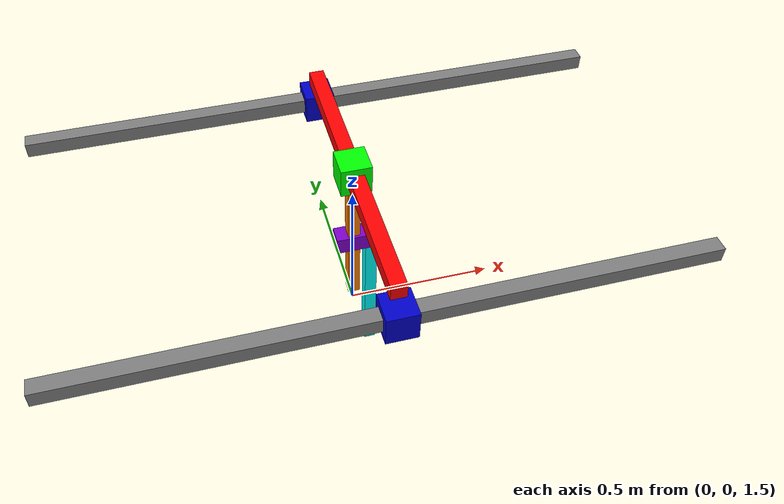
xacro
<?xml version="1.0"?>
<robot name="parallel_beam_gantry">

  <!-- |                                     BASE                                        | -->

  <!-- World Link: The static origin of the entire robot model -->
  <link name="world" />

  <!-- |                         X-AXIS GANTRY STRUCTURE (FIXED)                         | -->

  <!-- First parallel beam, mounted 2m high -->
  <link name="parallel_beam_1_link">
    <visual>
      <origin xyz="0 0 0" rpy="0 0 0"/>
      <geometry><box size="2.0 0.05 0.05"/></geometry>
      <material name="grey"><color rgba="0.5 0.5 0.5 1.0"/></material>
    </visual>
    <collision>
      <origin xyz="0 0 0" rpy="0 0 0"/>
      <geometry><box size="2.0 0.05 0.05"/></geometry>
    </collision>
    <inertial>
      <origin xyz="0 0 0" rpy="0 0 0"/>
      <mass value="2.0"/>
      <inertia ixx="0.000833" ixy="0.0" ixz="0.0" iyy="0.667083" iyz="0.0" izz="0.667083"/>
    </inertial>
  </link>
  <joint name="world_to_beam_1_joint" type="fixed">
    <parent link="world"/>
    <child link="parallel_beam_1_link"/>
    <origin xyz="0 0.5 2.0" rpy="0 0 0"/>
  </joint>

  <!-- Second parallel beam, mounted 2m high -->
  <link name="parallel_beam_2_link">
    <visual>
      <origin xyz="0 0 0" rpy="0 0 0"/>
      <geometry><box size="2.0 0.05 0.05"/></geometry>
      <material name="grey"/>
    </visual>
    <collision>
      <origin xyz="0 0 0" rpy="0 0 0"/>
      <geometry><box size="2.0 0.05 0.05"/></geometry>
    </collision>
    <inertial>
      <origin xyz="0 0 0" rpy="0 0 0"/>
      <mass value="2.0"/>
      <inertia ixx="0.000833" ixy="0.0" ixz="0.0" iyy="0.667083" iyz="0.0" izz="0.667083"/>
    </inertial>
  </link>
  <joint name="world_to_beam_2_joint" type="fixed">
    <parent link="world"/>
    <child link="parallel_beam_2_link"/>
    <origin xyz="0 -0.5 2.0" rpy="0 0 0"/>
  </joint>

  <!-- |                       X-AXIS MOTION ASSEMBLY (MOVES ON X)                       | -->

  <!-- Master slider for the X-axis -->
  <link name="x_slider_1_link">
    <visual>
      <geometry><box size="0.1 0.1 0.1"/></geometry>
      <material name="blue"><color rgba="0 0 0.8 1.0"/></material>
    </visual>
    <collision><geometry><box size="0.1 0.1 0.1"/></geometry></collision>
    <inertial>
      <origin xyz="0 0 0" rpy="0 0 0"/>
      <mass value="0.2"/>
      <inertia ixx="0.000333" ixy="0.0" ixz="0.0" iyy="0.000333" iyz="0.0" izz="0.000333"/>
    </inertial>
  </link>
  <joint name="x_slider_joint" type="prismatic">
    <parent link="parallel_beam_1_link"/>
    <child link="x_slider_1_link"/>
    <origin xyz="0 0 0" rpy="0 0 0"/>
    <axis xyz="1 0 0"/>
    <limit lower="-0.95" upper="0.95" effort="100" velocity="1.0"/>
  </joint>

  <!-- Slave slider for the X-axis (mimics the master) -->
  <link name="x_slider_2_link">
    <visual>
      <geometry><box size="0.1 0.1 0.1"/></geometry>
      <material name="blue"/>
    </visual>
    <collision><geometry><box size="0.1 0.1 0.1"/></geometry></collision>
    <inertial>
      <origin xyz="0 0 0" rpy="0 0 0"/>
      <mass value="0.2"/>
      <inertia ixx="0.000333" ixy="0.0" ixz="0.0" iyy="0.000333" iyz="0.0" izz="0.000333"/>
    </inertial>
  </link>
  <joint name="x_slider_mimic_joint" type="prismatic">
    <parent link="parallel_beam_2_link"/>
    <child link="x_slider_2_link"/>
    <origin xyz="0 0 0" rpy="0 0 0"/>
    <axis xyz="1 0 0"/>
    <limit lower="-0.95" upper="0.95" effort="100" velocity="1.0"/>
    <mimic joint="x_slider_joint" multiplier="1" offset="0"/>
  </joint>

  <!-- |                     Y-AXIS CARRIAGE ASSEMBLY (MOVES ON X)                       | -->

  <!-- Cross beam that spans the gantry and acts as the rail for the Y-axis -->
  <link name="cross_beam_link">
    <visual>
      <geometry><box size="0.05 1.0 0.05"/></geometry>
      <material name="red"><color rgba="1.0 0 0 1.0"/></material>
    </visual>
    <collision><geometry><box size="0.05 1.0 0.05"/></geometry></collision>
    <inertial>
      <origin xyz="0 0 0" rpy="0 0 0"/>
      <mass value="1.0"/>
      <inertia ixx="0.083542" ixy="0.0" ixz="0.0" iyy="0.000417" iyz="0.0" izz="0.083542"/>
    </inertial>
  </link>
  <joint name="cross_beam_attachment_joint" type="fixed">
    <parent link="x_slider_1_link"/>
    <child link="cross_beam_link"/>
    <origin xyz="0 -0.5 0.1" rpy="0 0 0"/>
  </joint>

  <!-- Slider for the Y-axis (moves along the red cross beam) -->
  <link name="y_slider_link">
    <visual>
      <geometry><box size="0.1 0.1 0.1"/></geometry>
      <material name="green"><color rgba="0 1.0 0 1.0"/></material>
    </visual>
    <collision><geometry><box size="0.1 0.1 0.1"/></geometry></collision>
    <inertial>
      <origin xyz="0 0 0" rpy="0 0 0"/>
      <mass value="0.2"/>
      <inertia ixx="0.000333" ixy="0.0" ixz="0.0" iyy="0.000333" iyz="0.0" izz="0.000333"/>
    </inertial>
  </link>
  <joint name="y_slider_joint" type="prismatic">
    <parent link="cross_beam_link"/>
    <child link="y_slider_link"/>
    <origin xyz="0 0 0" rpy="0 0 0"/>
    <axis xyz="0 1 0"/>
    <limit lower="-0.45" upper="0.45" effort="100" velocity="1.0"/>
  </joint>

  <!-- |                       Z-AXIS ACTUATOR ASSEMBLY (MOVES ON Y)                     | -->

  <!-- Vertical beam that acts as the rail for the Z-axis -->
  <link name="vertical_beam_link">
    <visual>
      <geometry><box size="0.04 0.04 0.5"/></geometry>
      <material name="orange"><color rgba="1.0 0.5 0.0 1.0"/></material>
    </visual>
    <collision><geometry><box size="0.04 0.04 0.5"/></geometry></collision>
    <inertial>
      <origin xyz="0 0 0" rpy="0 0 0"/>
      <mass value="0.5"/>
      <inertia ixx="0.01048" ixy="0.0" ixz="0.0" iyy="0.01048" iyz="0.0" izz="0.00013"/>
    </inertial>
  </link>
  <joint name="vertical_beam_attachment_joint" type="fixed">
    <parent link="y_slider_link"/>
    <child link="vertical_beam_link"/>
    <origin xyz="0 0 -0.3" rpy="0 0 0"/>
  </joint>

  <!-- Slider for the Z-axis, now a wider mounting plate -->
  <link name="z_slider_link">
    <visual>
      <!-- Made wider (in X) to act as a mounting plate -->
      <geometry><box size="0.12 0.06 0.06"/></geometry>
      <material name="purple"><color rgba="0.5 0 0.8 1.0"/></material>
    </visual>
    <collision><geometry><box size="0.12 0.06 0.06"/></geometry></collision>
    <inertial>
      <origin xyz="0 0 0" rpy="0 0 0"/>
      <mass value="0.2"/> <!-- Mass doubled for new size -->
      <!-- Inertia recalculated for a 0.12x0.06x0.06 box -->
      <inertia ixx="0.00012" ixy="0.0" ixz="0.0" iyy="0.0003" iyz="0.0" izz="0.00024"/>
    </inertial>
  </link>
  <joint name="z_slider_joint" type="prismatic">
    <parent link="vertical_beam_link"/>
    <child link="z_slider_link"/>
    <origin xyz="0 0 0" rpy="0 0 0"/>
    <axis xyz="0 0 1"/>
    <limit lower="-0.22" upper="0.22" effort="100" velocity="1.0"/>
  </joint>

  <!-- |                          END EFFECTOR (MOVES ON Z)                              | -->

  <!-- The final link, a vertical 0.5m beam, where a tool would be attached -->
  <link name="end_effector_link">
    <visual>
      <!-- Beam is 0.5m long, pointing down along the Z-axis -->
      <geometry>
        <box size="0.04 0.04 0.5"/>
      </geometry>
      <material name="cyan">
        <color rgba="0 1.0 1.0 1.0"/>
      </material>
    </visual>
    <collision>
      <geometry>
        <box size="0.04 0.04 0.5"/>
      </geometry>
    </collision>
    <inertial>
      <origin xyz="0 0 0" rpy="0 0 0"/>
      <mass value="0.4"/>
      <!-- Inertia recalculated for a 0.04x0.04x0.5 box -->
      <inertia ixx="0.00838" ixy="0.0" ixz="0.0" iyy="0.00838" iyz="0.0" izz="0.00011"/>
    </inertial>
  </link>
  <joint name="end_effector_attachment_joint" type="fixed">
    <parent link="z_slider_link"/>
    <child link="end_effector_link"/>
    <origin xyz="0.06 0 -0.28" rpy="0 0 0"/>
  </joint>

</robot>
